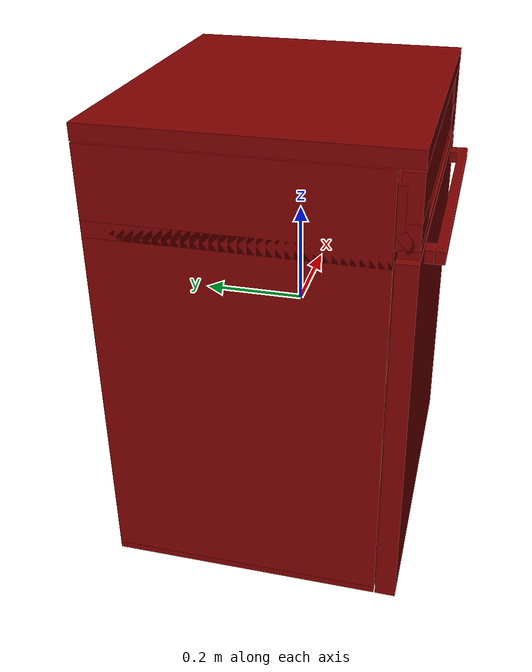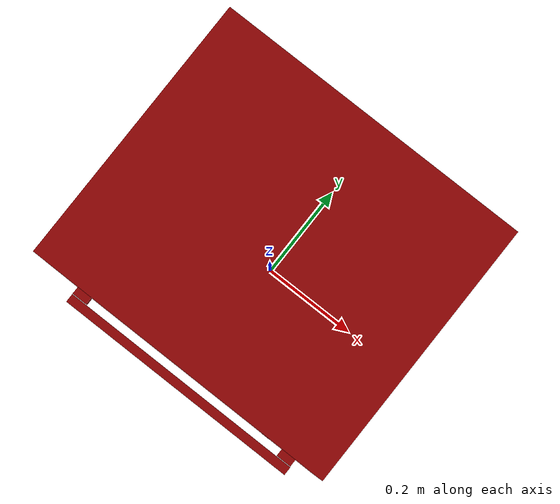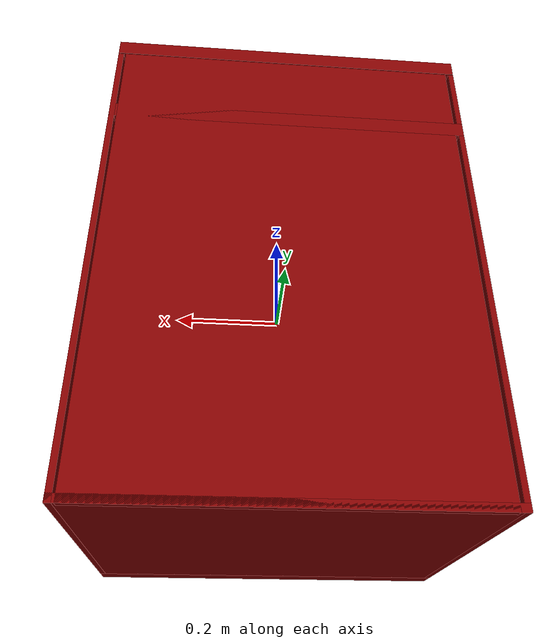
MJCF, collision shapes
<?xml version='1.0' encoding='UTF-8'?>
<mujoco model="model">
  <option timestep="0.002" gravity="0.0 0.0 -9.81"/>
  <compiler angle="radian"/>
  <asset>
    <mesh file="visuals/button_power.obj" name="button_power_vis"/>
    <mesh file="visuals/Body001.obj" name="Body001_vis"/>
    <mesh file="visuals/door.obj" name="door_vis"/>
    <mesh file="visuals/rack0.obj" name="rack0_vis"/>
    <mesh file="visuals/rack1.obj" name="rack1_vis"/>
    <texture file="visuals/T_BC001.png" name="Body001_material" type="2d"/>
    <material name="Body001_material" rgba="1 1 1 1.0" texture="Body001_material" shininess="2" specular="2"/>
    <texture file="visuals/T_BC001.png" name="button_power_material" type="2d"/>
    <material name="button_power_material" rgba="1 1 1 1.0" texture="button_power_material" shininess="1" specular="1"/>
    <texture file="visuals/T_BC001.png" name="door_material" type="2d"/>
    <material name="door_material" rgba="1 1 1 1.0" texture="door_material" shininess="2" specular="2"/>
    <texture file="visuals/T_BC001.png" name="rack0_material" type="2d"/>
    <material name="rack0_material" rgba="1 1 1 1.0" texture="rack0_material" shininess="10" specular="10"/>
    <texture file="visuals/T_BC001.png" name="rack1_material" type="2d"/>
    <material name="rack1_material" rgba="1 1 1 1.0" texture="rack1_material" shininess="10" specular="10"/>
  </asset>
  <default>
    <default class="visual">
      <geom conaffinity="0" contype="0" group="1" type="mesh"/>
    </default>
    <default class="collision">
      <geom group="0" rgba="0.5 0 0 0.5"/>
    </default>
    <default class="spawn">
      <geom group="0" rgba="1 1 1 0.5" contype="0" conaffinity="0"/>
      <site group="0" rgba="1 1 1 0.5"/>
    </default>
    <default class="region">
      <geom group="1" conaffinity="0" contype="0" rgba="0 1 0 0"/>
    </default>
  </default>
  <worldbody>
    <body>
      <body name="object">
        <geom mesh="Body001_vis" type="mesh" solimp="0.998 0.998 0.001" solref="0.001 1" friction="0.95 0.3 0.1" class="visual" material="Body001_material"/>
        <geom class="collision" type="box" pos="-0.3248522877693176 0.03842535614967346 -0.016537368297576904" size="0.004992987960577011 0.2622529864311218 0.43403053283691406" quat="1.0 0.0 0.0 0.0"/>
        <geom class="collision" type="box" pos="0.32482269406318665 0.03842540085315704 -0.016537398099899292" size="0.005022615194320679 0.2622530162334442 0.43403053283691406" quat="1.0 0.0 0.0 0.0"/>
        <geom class="collision" type="box" pos="0.0010968148708343506 0.295245885848999 -0.016537368297576904" size="0.3148406744003296 0.005432521924376488 0.43403053283691406" quat="1.0 0.0 0.0 0.0"/>
        <geom class="collision" type="box" pos="1.4901161193847656e-08 0.01756449043750763 0.4351772964000702" size="0.3298453092575073 0.28311383724212646 0.015390641987323761" quat="1.0 0.0 0.0 0.0"/>
        <geom class="collision" type="box" pos="0.2728598117828369 -0.24750524759292603 0.3740386366844177" size="0.056985534727573395 0.017724279314279556 0.041616618633270264" quat="1.0 0.0 0.0 0.0"/>
        <geom class="collision" type="box" pos="-2.9802322387695312e-08 0.038602352142333984 -0.4437950849533081" size="0.3298453688621521 0.26207607984542847 0.00677269883453846" quat="1.0 0.0 0.0 0.0"/>
        <geom class="collision" type="box" pos="-0.31672704219818115 0.05763019621372223 0.1458578258752823" size="0.0058710090816020966 0.19013711810112 0.0057366639375686646" quat="1.0 0.0 0.0 0.0"/>
        <geom class="collision" type="box" pos="-0.3167446255683899 0.05763019621372223 -0.2148466259241104" size="0.005853337235748768 0.19013711810112 0.005272387061268091" quat="1.0 0.0 0.0 0.0"/>
        <geom class="collision" type="box" pos="0.31567031145095825 0.05763019621372223 -0.2148466259241104" size="0.005512747913599014 0.19013711810112 0.004860355518758297" quat="1.0 0.0 0.0 0.0"/>
        <geom class="collision" type="box" pos="0.31567031145095825 0.05763019621372223 0.14585791528224945" size="0.005512747913599014 0.19013711810112 0.0054879868403077126" quat="1.0 0.0 0.0 0.0"/>
        <geom class="collision" type="box" pos="1.4901161193847656e-08 0.03769473731517792 0.26769670844078064" size="0.3298453092575073 0.26298367977142334 0.015329254791140556" quat="1.0 0.0 0.0 0.0"/>
        <geom class="collision" type="box" pos="1.4901161193847656e-08 -0.24750526249408722 0.28101176023483276" size="0.3298453092575073 0.01772429421544075 0.0070520737208426" quat="1.0 0.0 0.0 0.0"/>
        <geom class="collision" type="box" pos="1.4901161193847656e-08 -0.2327353060245514 0.3398922085762024" size="0.3298453092575073 0.007255828473716974 0.05285545811057091" quat="1.0 0.0 0.0 0.0"/>
        <geom class="collision" type="box" pos="1.4901161193847656e-08 -0.24442777037620544 0.30000245571136475" size="0.3298453092575073 0.009377594105899334 0.017914878204464912" quat="0.9509069919586182 -0.3094768524169922 6.871765881092835e-17 -2.35643066745852e-24"/>
        <geom class="collision" type="box" pos="-0.2740094065666199 -0.24750524759292603 0.313639372587204" size="0.05583588778972626 0.017724279314279556 0.02612212486565113" quat="1.0 0.0 0.0 0.0"/>
        <geom class="collision" type="box" pos="0.2743068039417267 -0.24750524759292603 0.313639372587204" size="0.055538490414619446 0.017724279314279556 0.02612212486565113" quat="1.0 0.0 0.0 0.0"/>
        <geom class="collision" type="box" pos="-0.07158614695072174 -0.24750524759292603 0.3740386366844177" size="0.2582591474056244 0.017724279314279556 0.041616618633270264" quat="1.0 0.0 0.0 0.0"/>
        <geom class="collision" type="box" pos="0.20162852108478546 -0.24750524759292603 0.3392407298088074" size="0.015788991004228592 0.017724279314279556 0.006818693596869707" quat="1.0 0.0 0.0 0.0"/>
        <geom class="collision" type="box" pos="0.20162852108478546 -0.24750524759292603 0.3929291367530823" size="0.015788991004228592 0.017724279314279556 0.022726107388734818" quat="1.0 0.0 0.0 0.0"/>
        <body name="button_power">
          <joint axis="0.0 1.0 0.0" pos="0.20096950232982635 -0.26457592844963074 0.35969388484954834" limited="true" name="button_power_joint" range="0.0 0.0018" type="slide" damping="1" frictionloss="1" armature=".01" stiffness="4" springref="-1"/>
          <geom mesh="button_power_vis" type="mesh" solimp="0.998 0.998 0.001" solref="0.001 1" friction="0.95 0.3 0.1" class="visual" material="button_power_material"/>
          <geom class="collision" type="box" pos="0.20096950232982635 -0.2649243474006653 0.35969388484954834" size="0.009595544077455997 0.0015133707784116268 0.007233613636344671" quat="1.0 0.0 0.0 0.0"/>
        </body>
        <body name="door">
          <joint axis="1.0 0.0 0.0" pos="-3.725290298461914e-08 -0.2655493523925543 -0.4505678340792656" limited="true" name="door_joint" range="0.0 0.6035987755982988" type="hinge" damping="1" frictionloss="10" armature="1" stiffness="2"/>
          <geom mesh="door_vis" type="mesh" solimp="0.998 0.998 0.001" solref="0.001 1" friction="0.95 0.3 0.1" class="visual" material="door_material"/>
          <geom class="collision" type="box" pos="-3.725290298461914e-08 -0.24612560868263245 -0.0932256206870079" size="0.3298453092575073 0.019423743709921837 0.3573422133922577" quat="1.0 0.0 0.0 0.0" name="door_main"/>
          <geom class="collision" type="box" pos="0.01088021695613861 -0.2916175127029419 0.2427549660205841" size="0.26153069734573364 0.008888829499483109 0.011611312627792358" quat="1.0 0.0 0.0 0.0" name="door_handle_main"/>
          <geom class="collision" type="box" pos="-0.2346762716770172 -0.2732362449169159 0.2427549660205841" size="0.016155900433659554 0.008243068121373653 0.011611312627792358" quat="1.0 0.0 0.0 0.0"/>
          <geom class="collision" type="box" pos="0.25513485074043274 -0.2732362449169159 0.2427549660205841" size="0.016155894845724106 0.008243068121373653 0.011611312627792358" quat="1.0 0.0 0.0 0.0"/>
        </body>
        <body name="rack0">
          <geom class="region" name="reg_rack0" type="box" pos="0.003991127014160156 0.03187188506126404 -0.1250440813601017" size="0.25569323992729187 0.2155254909992218 0.17073349079489708"/>
          <joint axis="0.0 -1.0 0.0" pos="-0.0006132684648036957 0.03041953220963478 -0.22710825502872467" limited="true" name="rack0_joint" range="0.0 0.08" type="slide" damping="1" frictionloss="1" armature=".01" stiffness="0.05"/>
          <geom mesh="rack0_vis" type="mesh" solimp="0.998 0.998 0.001" solref="0.001 1" friction="0.95 0.3 0.1" class="visual" material="rack0_material"/>
          <geom class="collision" type="box" pos="0.0016671344637870789 0.05724353715777397 -0.30381882190704346" size="0.29012763500213623 0.21466881036758423 0.003376383800059557" quat="1.0 0.0 0.0 0.0"/>
          <geom class="collision" type="box" pos="-0.286377489566803 0.057125914841890335 -0.2903081774711609" size="0.016833651810884476 0.21478644013404846 0.0057311332784593105" quat="0.7071068286895752 -4.7503018407724085e-08 -0.7071067094802856 -4.750301130229673e-08"/>
          <geom class="collision" type="box" pos="-0.2941237986087799 0.05712591111660004 -0.2637919485569" size="0.016833657398819923 0.21478644013404846 0.005645917262881994" quat="0.482354998588562 -5.8847543726869844e-08 -0.8759758472442627 -8.529075756769089e-08"/>
          <geom class="collision" type="box" pos="-0.29985570907592773 0.05757121741771698 -0.20043963193893433" size="0.05274532735347748 0.2143411785364151 0.0061887893825769424" quat="0.7071068286895752 -4.7503018407724085e-08 -0.7071067094802856 -4.750301130229673e-08"/>
          <geom class="collision" type="box" pos="-0.30850696563720703 0.05785875767469406 -0.22517967224121094" size="0.002323449356481433 0.1918901801109314 0.0026338398456573486" quat="0.7071068286895752 -4.7503018407724085e-08 -0.7071067094802856 -4.750301130229673e-08"/>
          <geom class="collision" type="box" pos="-0.30850696563720703 0.05785875767469406 -0.20466187596321106" size="0.002323449356481433 0.1918901801109314 0.0026338398456573486" quat="0.7071068286895752 -4.7503018407724085e-08 -0.7071067094802856 -4.750301130229673e-08"/>
          <geom class="collision" type="box" pos="0.0005788058042526245 -0.0034464895725250244 -0.30381882190704346" size="0.2099117636680603 0.21466881036758423 0.003376383800059557" quat="1.0 0.0 0.0 0.0"/>
          <geom class="collision" type="box" pos="-0.27781498432159424 -0.18319159746170044 -0.20011663436889648" size="0.05306829512119293 0.039873238652944565 0.0033764441031962633" quat="0.659754753112793 0.25440868735313416 -0.6597546339035034 0.2544086277484894"/>
          <geom class="collision" type="box" pos="-0.0009115263819694519 -0.21070614457130432 -0.22544020414352417" size="0.08015046268701553 0.2089340090751648 0.00634027412161231" quat="0.5000001192092896 0.5 -0.5 0.49999991059303284"/>
          <geom class="collision" type="box" pos="-0.21426725387573242 -0.21303585171699524 -0.20011663436889648" size="0.05306829512119293 0.039873234927654266 0.0033764378167688847" quat="0.5010020732879639 0.49899598956108093 -0.5010020136833191 0.49899590015411377"/>
          <geom class="collision" type="box" pos="-0.26710110902786255 -0.17968101799488068 -0.22472181916236877" size="0.01805032603442669 0.045341506600379944 0.0033764438703656197" quat="0.6498845219612122 0.27865779399871826 -0.6498844623565674 0.2786577641963959"/>
          <geom class="collision" type="box" pos="-0.30479657649993896 0.057571232318878174 -0.15054818987846375" size="0.003781501669436693 0.2143411785364151 0.005779982078820467" quat="0.7071068286895752 -4.7503018407724085e-08 -0.7071067094802856 -4.750301130229673e-08"/>
          <geom class="collision" type="box" pos="-0.19273126125335693 0.2749798893928528 -0.15054817497730255" size="0.003781501669436693 0.11591190844774246 0.005779982078820467" quat="0.5000001192092896 0.5 -0.5 0.49999991059303284"/>
          <geom class="collision" type="box" pos="0.002755574882030487 0.25034278631210327 -0.15054816007614136" size="0.003781501669436693 0.053143732249736786 0.005779982078820467" quat="0.5000001192092896 0.5 -0.5 0.49999991059303284"/>
          <geom class="collision" type="box" pos="-0.06510131061077118 0.2628217935562134 -0.15054816007614136" size="0.003781501669436693 0.021321935579180717 0.005779982078820467" quat="0.6408563852310181 0.29883623123168945 -0.6408563852310181 0.29883620142936707"/>
          <geom class="collision" type="box" pos="0.06482413411140442 0.2615354061126709 -0.15054817497730255" size="0.003781501669436693 0.021321959793567657 0.005779982078820467" quat="0.2988363206386566 0.6408563852310181 -0.29883629083633423 0.6408563256263733"/>
          <geom class="collision" type="box" pos="0.1927042007446289 0.274979829788208 -0.15054824948310852" size="0.003781501669436693 0.11591190844774246 0.005779982078820467" quat="0.5000001192092896 0.5 -0.5 0.49999991059303284"/>
          <geom class="collision" type="box" pos="0.3032689690589905 0.057571202516555786 -0.15054818987846375" size="0.003781501669436693 0.2143411785364151 0.005779982078820467" quat="0.7071068286895752 -4.7503018407724085e-08 0.7071067094802856 4.750301130229673e-08"/>
          <geom class="collision" type="box" pos="0.3073383569717407 0.05785878375172615 -0.20466187596321106" size="0.002323449356481433 0.1918901950120926 0.0029928397852927446" quat="0.7071068286895752 -4.7503018407724085e-08 0.7071067094802856 4.750301130229673e-08"/>
          <geom class="collision" type="box" pos="0.30733832716941833 0.05785878375172615 -0.22517968714237213" size="0.002323449356481433 0.1918901950120926 0.0029928397852927446" quat="0.7071068286895752 -4.7503018407724085e-08 0.7071067094802856 4.750301130229673e-08"/>
          <geom class="collision" type="box" pos="0.29832807183265686 0.057571202516555786 -0.20043960213661194" size="0.05274532735347748 0.2143411785364151 0.0061887893825769424" quat="0.7071068286895752 -4.7503018407724085e-08 0.7071067094802856 4.750301130229673e-08"/>
          <geom class="collision" type="box" pos="0.29259616136550903 0.05712592974305153 -0.26379188895225525" size="0.016833657398819923 0.21478644013404846 0.005645905155688524" quat="0.4823552072048187 -5.8847568595865596e-08 0.8759757280349731 8.529075756769089e-08"/>
          <geom class="collision" type="box" pos="0.2848498523235321 0.05712589621543884 -0.2903081774711609" size="0.016833651810884476 0.21478644013404846 0.0057311453856527805" quat="0.7071068286895752 -4.7503018407724085e-08 0.7071067094802856 4.750301130229673e-08"/>
          <geom class="collision" type="box" pos="0.2706991136074066 -0.18097344040870667 -0.22548188269138336" size="0.01805032603442669 0.04534149542450905 0.0033764317631721497" quat="0.6645538210868835 0.24159543216228485 0.6645536422729492 -0.24159538745880127"/>
          <geom class="collision" type="box" pos="0.21536655724048615 -0.21303585171699524 -0.20011663436889648" size="0.05306829512119293 0.039873234927654266 0.0033764378167688847" quat="0.5010020732879639 0.49899598956108093 0.5010020136833191 -0.49899590015411377"/>
          <geom class="collision" type="box" pos="0.27891427278518677 -0.18319159746170044 -0.20011663436889648" size="0.05306829512119293 0.039873238652944565 0.0033764319960027933" quat="0.659754753112793 0.25440868735313416 0.6597546339035034 -0.2544086277484894"/>
          <geom class="collision" type="box" pos="0.27146652340888977 -0.18270573019981384 -0.15054817497730255" size="0.003781501669436693 0.04157046228647232 0.005780006293207407" quat="0.6666365265846252 0.2357875555753708 0.6666364669799805 -0.2357875406742096"/>
          <geom class="collision" type="box" pos="-0.1953294575214386 0.27320390939712524 -0.22560755908489227" size="0.07550065964460373 0.11310505867004395 0.0061887893825769424" quat="0.5000001192092896 0.5 -0.5 0.49999991059303284"/>
          <geom class="collision" type="box" pos="0.0023013234604150057 0.25082069635391235 -0.22560754418373108" size="0.07550067454576492 0.05345769599080086 0.0061887893825769424" quat="0.5000001192092896 0.5 -0.5 0.49999991059303284"/>
          <geom class="collision" type="box" pos="-0.06510218232870102 0.2633320391178131 -0.22560754418373108" size="0.07550067454576492 0.021698351949453354 0.006188813131302595" quat="0.6344218254089355 0.31226426362991333 -0.6344217658042908 0.31226423382759094"/>
          <geom class="collision" type="box" pos="0.07047564536333084 0.2633320689201355 -0.22560754418373108" size="0.07550067454576492 0.021698351949453354 0.006188813131302595" quat="0.6344218254089355 0.31226426362991333 0.6344217658042908 -0.31226423382759094"/>
          <geom class="collision" type="box" pos="0.19220829010009766 0.27320390939712524 -0.22560754418373108" size="0.07550065964460373 0.10461044311523438 0.0061887893825769424" quat="0.5000001192092896 0.5 0.5 -0.49999991059303284"/>
          <geom class="collision" type="box" pos="-0.0003302246332168579 0.17182716727256775 -0.26300370693206787" size="0.0395793616771698 0.20281748473644257 0.0017566198948770761" quat="0.4398217499256134 0.5536757111549377 -0.5536763072013855 0.4398210942745209"/>
          <geom class="collision" type="box" pos="-0.00033020973205566406 0.0838288962841034 -0.26658403873443604" size="0.037777043879032135 0.20281748473644257 0.0017566198948770761" quat="0.6009702086448669 0.372605562210083 -0.3726055920124054 0.6009700298309326"/>
          <geom class="collision" type="box" pos="-0.00033023208379745483 -0.03813318908214569 -0.2667025625705719" size="0.037777047604322433 0.20281748473644257 0.0017566198948770761" quat="0.6009702086448669 0.372605562210083 -0.3726055920124054 0.6009700298309326"/>
          <geom class="collision" type="box" pos="-0.00033023953437805176 -0.16586217284202576 -0.26645779609680176" size="0.03777705132961273 0.20281748473644257 0.0017566169844940305" quat="0.3746050298213959 0.5997258424758911 -0.5997260212898254 0.3746046721935272"/>
        </body>
        <body name="rack1">
          <geom class="region" name="reg_rack1" type="box" pos="0.003991127014160156 0.03187188506126404 0.1568114198744297" size="0.25569323992729187 0.2155254909992218 0.09111569246649742"/>
          <joint axis="0.0 -1.0 0.0" pos="-0.0006132684648036957 0.03041953220963478 0.1337783932685852" limited="true" name="rack1_joint" range="0.0 0.27" type="slide" damping="1" frictionloss="1" armature=".01" stiffness="0.05"/>
          <geom mesh="rack1_vis" type="mesh" solimp="0.998 0.998 0.001" solref="0.001 1" friction="0.95 0.3 0.1" class="visual" material="rack1_material"/>
          <geom class="collision" type="box" pos="0.0016671344637870789 0.05724353715777397 0.05706782639026642" size="0.29012763500213623 0.21466881036758423 0.003376395907253027" quat="1.0 0.0 0.0 0.0"/>
          <geom class="collision" type="box" pos="-0.286377489566803 0.057125914841890335 0.07057850062847137" size="0.016833657398819923 0.21478644013404846 0.0057311332784593105" quat="0.7071068286895752 -4.7503018407724085e-08 -0.7071067094802856 -4.750301130229673e-08"/>
          <geom class="collision" type="box" pos="-0.2941237688064575 0.057125940918922424 0.09709469974040985" size="0.016833633184432983 0.21478644013404846 0.005645905155688524" quat="0.482354998588562 -5.8847543726869844e-08 -0.8759758472442627 -8.529075756769089e-08"/>
          <geom class="collision" type="box" pos="-0.29985570907592773 0.05757121741771698 0.16044706106185913" size="0.05274532735347748 0.2143411785364151 0.0061887893825769424" quat="0.7071068286895752 -4.7503018407724085e-08 -0.7071067094802856 -4.750301130229673e-08"/>
          <geom class="collision" type="box" pos="-0.30850696563720703 0.05785875767469406 0.13570697605609894" size="0.002323449356481433 0.1918901801109314 0.0026338398456573486" quat="0.7071068286895752 -4.7503018407724085e-08 -0.7071067094802856 -4.750301130229673e-08"/>
          <geom class="collision" type="box" pos="-0.30850696563720703 0.05785875767469406 0.1562248021364212" size="0.0023234253749251366 0.1918901801109314 0.0026338398456573486" quat="0.7071068286895752 -4.7503018407724085e-08 -0.7071067094802856 -4.750301130229673e-08"/>
          <geom class="collision" type="box" pos="0.0005788058042526245 -0.0034464895725250244 0.05706782639026642" size="0.2099117636680603 0.21466881036758423 0.003376395907253027" quat="1.0 0.0 0.0 0.0"/>
          <geom class="collision" type="box" pos="-0.27781498432159424 -0.18319159746170044 0.16077002882957458" size="0.05306831747293472 0.039873238652944565 0.0033764441031962633" quat="0.659754753112793 0.25440868735313416 -0.6597546339035034 0.2544086277484894"/>
          <geom class="collision" type="box" pos="-0.0009115114808082581 -0.21070614457130432 0.1354464590549469" size="0.08015047013759613 0.2089340090751648 0.00634027412161231" quat="0.5000001192092896 0.5 -0.5 0.49999991059303284"/>
          <geom class="collision" type="box" pos="-0.21426725387573242 -0.21303585171699524 0.1607700139284134" size="0.05306830629706383 0.039873234927654266 0.0033764378167688847" quat="0.5010020732879639 0.49899598956108093 -0.5010020136833191 0.49899590015411377"/>
          <geom class="collision" type="box" pos="-0.26710110902786255 -0.17968103289604187 0.1361647993326187" size="0.0180503036826849 0.045341506600379944 0.0033764438703656197" quat="0.6498845219612122 0.27865779399871826 -0.6498844623565674 0.2786577641963959"/>
          <geom class="collision" type="box" pos="-0.30479657649993896 0.057571232318878174 0.21033845841884613" size="0.0037815135437995195 0.2143411785364151 0.005779982078820467" quat="0.7071068286895752 -4.7503018407724085e-08 -0.7071067094802856 -4.750301130229673e-08"/>
          <geom class="collision" type="box" pos="-0.19273126125335693 0.2749798893928528 0.21033845841884613" size="0.0037815135437995195 0.11591190844774246 0.005779982078820467" quat="0.5000001192092896 0.5 -0.5 0.49999991059303284"/>
          <geom class="collision" type="box" pos="0.00275556743144989 0.25034278631210327 0.21033848822116852" size="0.0037815135437995195 0.053143735975027084 0.005779982078820467" quat="0.5000001192092896 0.5 -0.5 0.49999991059303284"/>
          <geom class="collision" type="box" pos="-0.06510131061077118 0.2628217935562134 0.21033848822116852" size="0.0037815135437995195 0.021321935579180717 0.005779982078820467" quat="0.6408563852310181 0.29883623123168945 -0.6408563852310181 0.29883620142936707"/>
          <geom class="collision" type="box" pos="0.06482411921024323 0.2615354359149933 0.2103385180234909" size="0.0037815135437995195 0.021321935579180717 0.005779982078820467" quat="0.2988363206386566 0.6408563852310181 -0.29883629083633423 0.6408563256263733"/>
          <geom class="collision" type="box" pos="0.1927042305469513 0.274979829788208 0.21033836901187897" size="0.0037815135437995195 0.11591190844774246 0.005779982078820467" quat="0.5000001192092896 0.5 -0.5 0.49999991059303284"/>
          <geom class="collision" type="box" pos="0.3032689690589905 0.057571202516555786 0.21033842861652374" size="0.0037815135437995195 0.2143411785364151 0.005779982078820467" quat="0.7071068286895752 -4.7503018407724085e-08 0.7071067094802856 4.750301130229673e-08"/>
          <geom class="collision" type="box" pos="0.30733832716941833 0.05785878375172615 0.15622477233409882" size="0.0023234253749251366 0.1918901950120926 0.0029928397852927446" quat="0.7071068286895752 -4.7503018407724085e-08 0.7071067094802856 4.750301130229673e-08"/>
          <geom class="collision" type="box" pos="0.30733829736709595 0.05785878375172615 0.13570697605609894" size="0.002323449356481433 0.1918901950120926 0.0029928397852927446" quat="0.7071068286895752 -4.7503018407724085e-08 0.7071067094802856 4.750301130229673e-08"/>
          <geom class="collision" type="box" pos="0.2983280420303345 0.057571202516555786 0.16044703125953674" size="0.05274530127644539 0.2143411785364151 0.0061887893825769424" quat="0.7071068286895752 -4.7503018407724085e-08 0.7071067094802856 4.750301130229673e-08"/>
          <geom class="collision" type="box" pos="0.29259613156318665 0.05712592601776123 0.09709474444389343" size="0.016833646222949028 0.21478644013404846 0.005645911209285259" quat="0.4823552072048187 -5.8847568595865596e-08 0.8759757280349731 8.529075756769089e-08"/>
          <geom class="collision" type="box" pos="0.2848498225212097 0.05712589621543884 0.07057850062847137" size="0.016833657398819923 0.21478644013404846 0.0057311332784593105" quat="0.7071068286895752 -4.7503018407724085e-08 0.7071067094802856 4.750301130229673e-08"/>
          <geom class="collision" type="box" pos="0.2706991136074066 -0.18097344040870667 0.13540473580360413" size="0.018050340935587883 0.04534149169921875 0.0033764317631721497" quat="0.6645538210868835 0.24159543216228485 0.6645536422729492 -0.24159538745880127"/>
          <geom class="collision" type="box" pos="0.21536657214164734 -0.21303585171699524 0.16077002882957458" size="0.05306829512119293 0.039873238652944565 0.0033764378167688847" quat="0.5010020732879639 0.49899598956108093 0.5010020136833191 -0.49899590015411377"/>
          <geom class="collision" type="box" pos="0.27891427278518677 -0.18319159746170044 0.1607700139284134" size="0.05306830629706383 0.039873238652944565 0.0033764319960027933" quat="0.659754753112793 0.25440868735313416 0.6597546339035034 -0.2544086277484894"/>
          <geom class="collision" type="box" pos="0.27146652340888977 -0.18270573019981384 0.21033842861652374" size="0.0037815135437995195 0.04157046228647232 0.005780006293207407" quat="0.6666365265846252 0.2357875555753708 0.6666364669799805 -0.2357875406742096"/>
          <geom class="collision" type="box" pos="-0.1953294575214386 0.27320390939712524 0.1352791041135788" size="0.07550065964460373 0.11310505867004395 0.0061887893825769424" quat="0.5000001192092896 0.5 -0.5 0.49999991059303284"/>
          <geom class="collision" type="box" pos="0.0023013323079794645 0.25082069635391235 0.1352791041135788" size="0.07550068944692612 0.05345769599080086 0.0061887893825769424" quat="0.5000001192092896 0.5 -0.5 0.49999991059303284"/>
          <geom class="collision" type="box" pos="-0.06510216742753983 0.2633320093154907 0.13527911901474" size="0.07550065219402313 0.02169834077358246 0.006188813131302595" quat="0.6344218254089355 0.31226426362991333 -0.6344217658042908 0.31226423382759094"/>
          <geom class="collision" type="box" pos="0.07047563791275024 0.2633320689201355 0.13527911901474" size="0.07550067454576492 0.021698351949453354 0.006188813131302595" quat="0.6344218254089355 0.31226426362991333 0.6344217658042908 -0.31226423382759094"/>
          <geom class="collision" type="box" pos="0.19220829010009766 0.27320390939712524 0.1352790892124176" size="0.07550065219402313 0.10461044311523438 0.0061887893825769424" quat="0.5000001192092896 0.5 0.5 -0.49999991059303284"/>
          <geom class="collision" type="box" pos="-0.00033023953437805176 0.17182716727256775 0.097882941365242" size="0.039579350501298904 0.20281748473644257 0.0017565960297361016" quat="0.4398217499256134 0.5536757111549377 -0.5536763072013855 0.4398210942745209"/>
          <geom class="collision" type="box" pos="-0.00033023208379745483 0.0838288888335228 0.09430265426635742" size="0.03777705505490303 0.20281748473644257 0.001756613957695663" quat="0.6009702086448669 0.372605562210083 -0.3726055920124054 0.6009700298309326"/>
          <geom class="collision" type="box" pos="-0.00033023208379745483 -0.03813318908214569 0.09418408572673798" size="0.037777043879032135 0.20281748473644257 0.0017566154710948467" quat="0.6009702086448669 0.372605562210083 -0.3726055920124054 0.6009700298309326"/>
          <geom class="collision" type="box" pos="-0.00033023953437805176 -0.16586217284202576 0.0944288820028305" size="0.037777043879032135 0.20281748473644257 0.0017566198948770761" quat="0.3746050298213959 0.5997258424758911 -0.5997260212898254 0.3746046721935272"/>
        </body>
        <geom class="region" name="reg_int" type="box" pos="9.073317050933838e-05 0.030637316405773163 -0.09226151555776596" size="0.3154953101873398 0.2549023235440254 0.3403273130059242"/>
        <geom class="region" name="reg_main" type="box" pos="0.0 0.01756446063518524 0.0" size="0.3308453092575073 0.28411389684677124 0.45156790113449097"/>
      </body>
    </body>
  </worldbody>
  <actuator>
    <motor name="button_power_joint_actuator" joint="button_power_joint" gear="0.5"/>
    <motor name="door_joint_actuator" joint="door_joint" gear="50"/>
    <motor name="rack0_joint_actuator" joint="rack0_joint" gear="50"/>
    <motor name="rack1_joint_actuator" joint="rack1_joint" gear="50"/>
  </actuator>
</mujoco>
